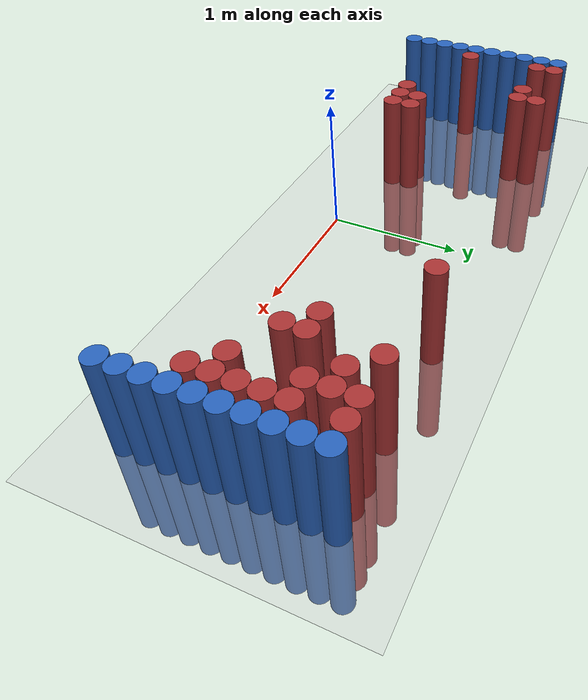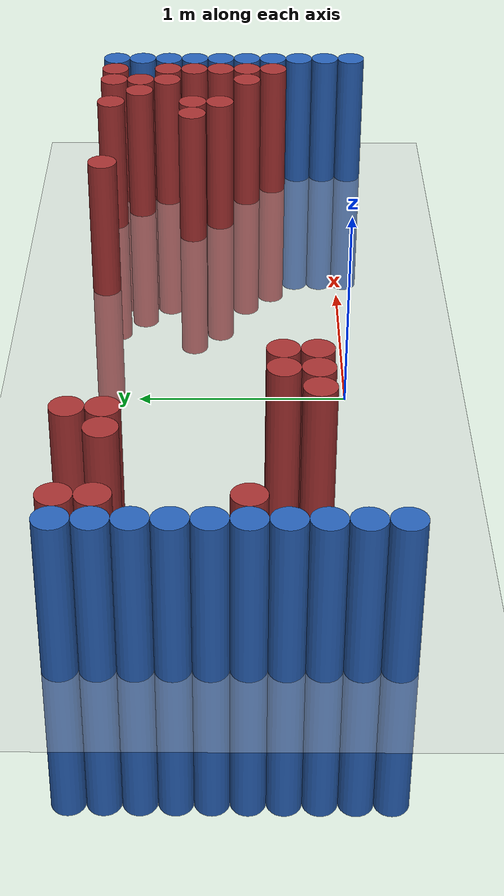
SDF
<sdf version="1.6">
 <world name="default">
  <model name="ground_plane">
   <static>1</static>
   <link name="link">
    <collision name="collision">
     <geometry><plane><normal>0 0 1</normal><size>100 100</size></plane></geometry>
     <surface><friction><ode><mu>100</mu><mu2>50</mu2></ode></friction></surface>
    </collision>
    <visual name="visual">
     <cast_shadows>0</cast_shadows>
     <geometry><plane><normal>0 0 1</normal><size>100 100</size></plane></geometry>
     <material>
      <script><uri>file://media/materials/scripts/gazebo.material</uri><name>Gazebo/Grey</name></script>
     </material>
    </visual>
   </link>
  </model>
  <model name="unit_cylinder_92">
   <static>1</static>
   <pose>2.425000 -0.125000 0.000000 0.000000 0.000000 0.000000</pose>
   <link name="link">
    <inertial>
     <mass>1</mass>
     <inertia><ixx>0.145833</ixx><ixy>0</ixy><ixz>0</ixz><iyy>0.145833</iyy><iyz>0</iyz><izz>0.125</izz></inertia>
    </inertial>
    <collision name="collision">
     <geometry><cylinder><radius>0.075000</radius><length>1.5</length></cylinder></geometry>
    </collision>
    <visual name="visual">
     <geometry><cylinder><radius>0.075000</radius><length>1.5</length></cylinder></geometry>
     <material>
      <ambient>0.152000 0.379000 0.720000 1</ambient>
      <diffuse>0.152000 0.379000 0.720000 1</diffuse>
     </material>
     <material>
      <script><name>Gazebo/Grey</name><uri>file://media/materials/scripts/gazebo.material</uri></script>
     </material>
    </visual>
   </link>
  </model>
  <model name="unit_cylinder_93">
   <static>1</static>
   <pose>-1.925000 -0.125000 0.000000 0.000000 0.000000 0.000000</pose>
   <link name="link">
    <inertial>
     <mass>1</mass>
     <inertia><ixx>0.145833</ixx><ixy>0</ixy><ixz>0</ixz><iyy>0.145833</iyy><iyz>0</iyz><izz>0.125</izz></inertia>
    </inertial>
    <collision name="collision">
     <geometry><cylinder><radius>0.075000</radius><length>1.5</length></cylinder></geometry>
    </collision>
    <visual name="visual">
     <geometry><cylinder><radius>0.075000</radius><length>1.5</length></cylinder></geometry>
     <material>
      <ambient>0.152000 0.379000 0.720000 1</ambient>
      <diffuse>0.152000 0.379000 0.720000 1</diffuse>
     </material>
     <material>
      <script><name>Gazebo/Grey</name><uri>file://media/materials/scripts/gazebo.material</uri></script>
     </material>
    </visual>
   </link>
  </model>
  <model name="unit_cylinder_94">
   <static>1</static>
   <pose>2.425000 0.025000 0.000000 0.000000 0.000000 0.000000</pose>
   <link name="link">
    <inertial>
     <mass>1</mass>
     <inertia><ixx>0.145833</ixx><ixy>0</ixy><ixz>0</ixz><iyy>0.145833</iyy><iyz>0</iyz><izz>0.125</izz></inertia>
    </inertial>
    <collision name="collision">
     <geometry><cylinder><radius>0.075000</radius><length>1.5</length></cylinder></geometry>
    </collision>
    <visual name="visual">
     <geometry><cylinder><radius>0.075000</radius><length>1.5</length></cylinder></geometry>
     <material>
      <ambient>0.152000 0.379000 0.720000 1</ambient>
      <diffuse>0.152000 0.379000 0.720000 1</diffuse>
     </material>
     <material>
      <script><name>Gazebo/Grey</name><uri>file://media/materials/scripts/gazebo.material</uri></script>
     </material>
    </visual>
   </link>
  </model>
  <model name="unit_cylinder_95">
   <static>1</static>
   <pose>-1.925000 0.025000 0.000000 0.000000 0.000000 0.000000</pose>
   <link name="link">
    <inertial>
     <mass>1</mass>
     <inertia><ixx>0.145833</ixx><ixy>0</ixy><ixz>0</ixz><iyy>0.145833</iyy><iyz>0</iyz><izz>0.125</izz></inertia>
    </inertial>
    <collision name="collision">
     <geometry><cylinder><radius>0.075000</radius><length>1.5</length></cylinder></geometry>
    </collision>
    <visual name="visual">
     <geometry><cylinder><radius>0.075000</radius><length>1.5</length></cylinder></geometry>
     <material>
      <ambient>0.152000 0.379000 0.720000 1</ambient>
      <diffuse>0.152000 0.379000 0.720000 1</diffuse>
     </material>
     <material>
      <script><name>Gazebo/Grey</name><uri>file://media/materials/scripts/gazebo.material</uri></script>
     </material>
    </visual>
   </link>
  </model>
  <model name="unit_cylinder_96">
   <static>1</static>
   <pose>-1.925000 0.175000 0.000000 0.000000 0.000000 0.000000</pose>
   <link name="link">
    <inertial>
     <mass>1</mass>
     <inertia><ixx>0.145833</ixx><ixy>0</ixy><ixz>0</ixz><iyy>0.145833</iyy><iyz>0</iyz><izz>0.125</izz></inertia>
    </inertial>
    <collision name="collision">
     <geometry><cylinder><radius>0.075000</radius><length>1.5</length></cylinder></geometry>
    </collision>
    <visual name="visual">
     <geometry><cylinder><radius>0.075000</radius><length>1.5</length></cylinder></geometry>
     <material>
      <ambient>0.152000 0.379000 0.720000 1</ambient>
      <diffuse>0.152000 0.379000 0.720000 1</diffuse>
     </material>
     <material>
      <script><name>Gazebo/Grey</name><uri>file://media/materials/scripts/gazebo.material</uri></script>
     </material>
    </visual>
   </link>
  </model>
  <model name="unit_cylinder_97">
   <static>1</static>
   <pose>-1.925000 0.325000 0.000000 0.000000 0.000000 0.000000</pose>
   <link name="link">
    <inertial>
     <mass>1</mass>
     <inertia><ixx>0.145833</ixx><ixy>0</ixy><ixz>0</ixz><iyy>0.145833</iyy><iyz>0</iyz><izz>0.125</izz></inertia>
    </inertial>
    <collision name="collision">
     <geometry><cylinder><radius>0.075000</radius><length>1.5</length></cylinder></geometry>
    </collision>
    <visual name="visual">
     <geometry><cylinder><radius>0.075000</radius><length>1.5</length></cylinder></geometry>
     <material>
      <ambient>0.152000 0.379000 0.720000 1</ambient>
      <diffuse>0.152000 0.379000 0.720000 1</diffuse>
     </material>
     <material>
      <script><name>Gazebo/Grey</name><uri>file://media/materials/scripts/gazebo.material</uri></script>
     </material>
    </visual>
   </link>
  </model>
  <model name="unit_cylinder_98">
   <static>1</static>
   <pose>-1.925000 0.475000 0.000000 0.000000 0.000000 0.000000</pose>
   <link name="link">
    <inertial>
     <mass>1</mass>
     <inertia><ixx>0.145833</ixx><ixy>0</ixy><ixz>0</ixz><iyy>0.145833</iyy><iyz>0</iyz><izz>0.125</izz></inertia>
    </inertial>
    <collision name="collision">
     <geometry><cylinder><radius>0.075000</radius><length>1.5</length></cylinder></geometry>
    </collision>
    <visual name="visual">
     <geometry><cylinder><radius>0.075000</radius><length>1.5</length></cylinder></geometry>
     <material>
      <ambient>0.152000 0.379000 0.720000 1</ambient>
      <diffuse>0.152000 0.379000 0.720000 1</diffuse>
     </material>
     <material>
      <script><name>Gazebo/Grey</name><uri>file://media/materials/scripts/gazebo.material</uri></script>
     </material>
    </visual>
   </link>
  </model>
  <model name="unit_cylinder_99">
   <static>1</static>
   <pose>-1.925000 0.625000 0.000000 0.000000 0.000000 0.000000</pose>
   <link name="link">
    <inertial>
     <mass>1</mass>
     <inertia><ixx>0.145833</ixx><ixy>0</ixy><ixz>0</ixz><iyy>0.145833</iyy><iyz>0</iyz><izz>0.125</izz></inertia>
    </inertial>
    <collision name="collision">
     <geometry><cylinder><radius>0.075000</radius><length>1.5</length></cylinder></geometry>
    </collision>
    <visual name="visual">
     <geometry><cylinder><radius>0.075000</radius><length>1.5</length></cylinder></geometry>
     <material>
      <ambient>0.152000 0.379000 0.720000 1</ambient>
      <diffuse>0.152000 0.379000 0.720000 1</diffuse>
     </material>
     <material>
      <script><name>Gazebo/Grey</name><uri>file://media/materials/scripts/gazebo.material</uri></script>
     </material>
    </visual>
   </link>
  </model>
  <model name="unit_cylinder_100">
   <static>1</static>
   <pose>-1.925000 0.775000 0.000000 0.000000 0.000000 0.000000</pose>
   <link name="link">
    <inertial>
     <mass>1</mass>
     <inertia><ixx>0.145833</ixx><ixy>0</ixy><ixz>0</ixz><iyy>0.145833</iyy><iyz>0</iyz><izz>0.125</izz></inertia>
    </inertial>
    <collision name="collision">
     <geometry><cylinder><radius>0.075000</radius><length>1.5</length></cylinder></geometry>
    </collision>
    <visual name="visual">
     <geometry><cylinder><radius>0.075000</radius><length>1.5</length></cylinder></geometry>
     <material>
      <ambient>0.152000 0.379000 0.720000 1</ambient>
      <diffuse>0.152000 0.379000 0.720000 1</diffuse>
     </material>
     <material>
      <script><name>Gazebo/Grey</name><uri>file://media/materials/scripts/gazebo.material</uri></script>
     </material>
    </visual>
   </link>
  </model>
  <model name="unit_cylinder_101">
   <static>1</static>
   <pose>-1.925000 0.925000 0.000000 0.000000 0.000000 0.000000</pose>
   <link name="link">
    <inertial>
     <mass>1</mass>
     <inertia><ixx>0.145833</ixx><ixy>0</ixy><ixz>0</ixz><iyy>0.145833</iyy><iyz>0</iyz><izz>0.125</izz></inertia>
    </inertial>
    <collision name="collision">
     <geometry><cylinder><radius>0.075000</radius><length>1.5</length></cylinder></geometry>
    </collision>
    <visual name="visual">
     <geometry><cylinder><radius>0.075000</radius><length>1.5</length></cylinder></geometry>
     <material>
      <ambient>0.152000 0.379000 0.720000 1</ambient>
      <diffuse>0.152000 0.379000 0.720000 1</diffuse>
     </material>
     <material>
      <script><name>Gazebo/Grey</name><uri>file://media/materials/scripts/gazebo.material</uri></script>
     </material>
    </visual>
   </link>
  </model>
  <model name="unit_cylinder_102">
   <static>1</static>
   <pose>-1.925000 1.075000 0.000000 0.000000 0.000000 0.000000</pose>
   <link name="link">
    <inertial>
     <mass>1</mass>
     <inertia><ixx>0.145833</ixx><ixy>0</ixy><ixz>0</ixz><iyy>0.145833</iyy><iyz>0</iyz><izz>0.125</izz></inertia>
    </inertial>
    <collision name="collision">
     <geometry><cylinder><radius>0.075000</radius><length>1.5</length></cylinder></geometry>
    </collision>
    <visual name="visual">
     <geometry><cylinder><radius>0.075000</radius><length>1.5</length></cylinder></geometry>
     <material>
      <ambient>0.152000 0.379000 0.720000 1</ambient>
      <diffuse>0.152000 0.379000 0.720000 1</diffuse>
     </material>
     <material>
      <script><name>Gazebo/Grey</name><uri>file://media/materials/scripts/gazebo.material</uri></script>
     </material>
    </visual>
   </link>
  </model>
  <model name="unit_cylinder_103">
   <static>1</static>
   <pose>-1.925000 1.225000 0.000000 0.000000 0.000000 0.000000</pose>
   <link name="link">
    <inertial>
     <mass>1</mass>
     <inertia><ixx>0.145833</ixx><ixy>0</ixy><ixz>0</ixz><iyy>0.145833</iyy><iyz>0</iyz><izz>0.125</izz></inertia>
    </inertial>
    <collision name="collision">
     <geometry><cylinder><radius>0.075000</radius><length>1.5</length></cylinder></geometry>
    </collision>
    <visual name="visual">
     <geometry><cylinder><radius>0.075000</radius><length>1.5</length></cylinder></geometry>
     <material>
      <ambient>0.152000 0.379000 0.720000 1</ambient>
      <diffuse>0.152000 0.379000 0.720000 1</diffuse>
     </material>
     <material>
      <script><name>Gazebo/Grey</name><uri>file://media/materials/scripts/gazebo.material</uri></script>
     </material>
    </visual>
   </link>
  </model>
  <model name="unit_cylinder_126">
   <static>1</static>
   <pose>-1.775000 0.475000 0.000000 0.000000 0.000000 0.000000</pose>
   <link name="link">
    <inertial>
     <mass>1</mass>
     <inertia><ixx>0.145833</ixx><ixy>0</ixy><ixz>0</ixz><iyy>0.145833</iyy><iyz>0</iyz><izz>0.125</izz></inertia>
    </inertial>
    <collision name="collision">
     <geometry><cylinder><radius>0.075000</radius><length>1.5</length></cylinder></geometry>
    </collision>
    <visual name="visual">
     <geometry><cylinder><radius>0.075000</radius><length>1.5</length></cylinder></geometry>
     <material>
      <ambient>0.648000 0.192000 0.192000 1</ambient>
      <diffuse>0.648000 0.192000 0.192000 1</diffuse>
     </material>
     <material>
      <script><name>Gazebo/Grey</name><uri>file://media/materials/scripts/gazebo.material</uri></script>
     </material>
    </visual>
   </link>
  </model>
  <model name="unit_cylinder_127">
   <static>1</static>
   <pose>-1.775000 1.075000 0.000000 0.000000 0.000000 0.000000</pose>
   <link name="link">
    <inertial>
     <mass>1</mass>
     <inertia><ixx>0.145833</ixx><ixy>0</ixy><ixz>0</ixz><iyy>0.145833</iyy><iyz>0</iyz><izz>0.125</izz></inertia>
    </inertial>
    <collision name="collision">
     <geometry><cylinder><radius>0.075000</radius><length>1.5</length></cylinder></geometry>
    </collision>
    <visual name="visual">
     <geometry><cylinder><radius>0.075000</radius><length>1.5</length></cylinder></geometry>
     <material>
      <ambient>0.648000 0.192000 0.192000 1</ambient>
      <diffuse>0.648000 0.192000 0.192000 1</diffuse>
     </material>
     <material>
      <script><name>Gazebo/Grey</name><uri>file://media/materials/scripts/gazebo.material</uri></script>
     </material>
    </visual>
   </link>
  </model>
  <model name="unit_cylinder_128">
   <static>1</static>
   <pose>-1.775000 1.225000 0.000000 0.000000 0.000000 0.000000</pose>
   <link name="link">
    <inertial>
     <mass>1</mass>
     <inertia><ixx>0.145833</ixx><ixy>0</ixy><ixz>0</ixz><iyy>0.145833</iyy><iyz>0</iyz><izz>0.125</izz></inertia>
    </inertial>
    <collision name="collision">
     <geometry><cylinder><radius>0.075000</radius><length>1.5</length></cylinder></geometry>
    </collision>
    <visual name="visual">
     <geometry><cylinder><radius>0.075000</radius><length>1.5</length></cylinder></geometry>
     <material>
      <ambient>0.648000 0.192000 0.192000 1</ambient>
      <diffuse>0.648000 0.192000 0.192000 1</diffuse>
     </material>
     <material>
      <script><name>Gazebo/Grey</name><uri>file://media/materials/scripts/gazebo.material</uri></script>
     </material>
    </visual>
   </link>
  </model>
  <model name="unit_cylinder_152">
   <static>1</static>
   <pose>-1.325000 1.075000 0.000000 0.000000 0.000000 0.000000</pose>
   <link name="link">
    <inertial>
     <mass>1</mass>
     <inertia><ixx>0.145833</ixx><ixy>0</ixy><ixz>0</ixz><iyy>0.145833</iyy><iyz>0</iyz><izz>0.125</izz></inertia>
    </inertial>
    <collision name="collision">
     <geometry><cylinder><radius>0.075000</radius><length>1.5</length></cylinder></geometry>
    </collision>
    <visual name="visual">
     <geometry><cylinder><radius>0.075000</radius><length>1.5</length></cylinder></geometry>
     <material>
      <ambient>0.648000 0.192000 0.192000 1</ambient>
      <diffuse>0.648000 0.192000 0.192000 1</diffuse>
     </material>
     <material>
      <script><name>Gazebo/Grey</name><uri>file://media/materials/scripts/gazebo.material</uri></script>
     </material>
    </visual>
   </link>
  </model>
  <model name="unit_cylinder_153">
   <static>1</static>
   <pose>-1.175000 1.075000 0.000000 0.000000 0.000000 0.000000</pose>
   <link name="link">
    <inertial>
     <mass>1</mass>
     <inertia><ixx>0.145833</ixx><ixy>0</ixy><ixz>0</ixz><iyy>0.145833</iyy><iyz>0</iyz><izz>0.125</izz></inertia>
    </inertial>
    <collision name="collision">
     <geometry><cylinder><radius>0.075000</radius><length>1.5</length></cylinder></geometry>
    </collision>
    <visual name="visual">
     <geometry><cylinder><radius>0.075000</radius><length>1.5</length></cylinder></geometry>
     <material>
      <ambient>0.648000 0.192000 0.192000 1</ambient>
      <diffuse>0.648000 0.192000 0.192000 1</diffuse>
     </material>
     <material>
      <script><name>Gazebo/Grey</name><uri>file://media/materials/scripts/gazebo.material</uri></script>
     </material>
    </visual>
   </link>
  </model>
  <model name="unit_cylinder_154">
   <static>1</static>
   <pose>-1.175000 1.225000 0.000000 0.000000 0.000000 0.000000</pose>
   <link name="link">
    <inertial>
     <mass>1</mass>
     <inertia><ixx>0.145833</ixx><ixy>0</ixy><ixz>0</ixz><iyy>0.145833</iyy><iyz>0</iyz><izz>0.125</izz></inertia>
    </inertial>
    <collision name="collision">
     <geometry><cylinder><radius>0.075000</radius><length>1.5</length></cylinder></geometry>
    </collision>
    <visual name="visual">
     <geometry><cylinder><radius>0.075000</radius><length>1.5</length></cylinder></geometry>
     <material>
      <ambient>0.648000 0.192000 0.192000 1</ambient>
      <diffuse>0.648000 0.192000 0.192000 1</diffuse>
     </material>
     <material>
      <script><name>Gazebo/Grey</name><uri>file://media/materials/scripts/gazebo.material</uri></script>
     </material>
    </visual>
   </link>
  </model>
  <model name="unit_cylinder_156">
   <static>1</static>
   <pose>-1.025000 0.175000 0.000000 0.000000 0.000000 0.000000</pose>
   <link name="link">
    <inertial>
     <mass>1</mass>
     <inertia><ixx>0.145833</ixx><ixy>0</ixy><ixz>0</ixz><iyy>0.145833</iyy><iyz>0</iyz><izz>0.125</izz></inertia>
    </inertial>
    <collision name="collision">
     <geometry><cylinder><radius>0.075000</radius><length>1.5</length></cylinder></geometry>
    </collision>
    <visual name="visual">
     <geometry><cylinder><radius>0.075000</radius><length>1.5</length></cylinder></geometry>
     <material>
      <ambient>0.648000 0.192000 0.192000 1</ambient>
      <diffuse>0.648000 0.192000 0.192000 1</diffuse>
     </material>
     <material>
      <script><name>Gazebo/Grey</name><uri>file://media/materials/scripts/gazebo.material</uri></script>
     </material>
    </visual>
   </link>
  </model>
  <model name="unit_cylinder_160">
   <static>1</static>
   <pose>-0.875000 0.175000 0.000000 0.000000 0.000000 0.000000</pose>
   <link name="link">
    <inertial>
     <mass>1</mass>
     <inertia><ixx>0.145833</ixx><ixy>0</ixy><ixz>0</ixz><iyy>0.145833</iyy><iyz>0</iyz><izz>0.125</izz></inertia>
    </inertial>
    <collision name="collision">
     <geometry><cylinder><radius>0.075000</radius><length>1.5</length></cylinder></geometry>
    </collision>
    <visual name="visual">
     <geometry><cylinder><radius>0.075000</radius><length>1.5</length></cylinder></geometry>
     <material>
      <ambient>0.648000 0.192000 0.192000 1</ambient>
      <diffuse>0.648000 0.192000 0.192000 1</diffuse>
     </material>
     <material>
      <script><name>Gazebo/Grey</name><uri>file://media/materials/scripts/gazebo.material</uri></script>
     </material>
    </visual>
   </link>
  </model>
  <model name="unit_cylinder_161">
   <static>1</static>
   <pose>-0.875000 0.325000 0.000000 0.000000 0.000000 0.000000</pose>
   <link name="link">
    <inertial>
     <mass>1</mass>
     <inertia><ixx>0.145833</ixx><ixy>0</ixy><ixz>0</ixz><iyy>0.145833</iyy><iyz>0</iyz><izz>0.125</izz></inertia>
    </inertial>
    <collision name="collision">
     <geometry><cylinder><radius>0.075000</radius><length>1.5</length></cylinder></geometry>
    </collision>
    <visual name="visual">
     <geometry><cylinder><radius>0.075000</radius><length>1.5</length></cylinder></geometry>
     <material>
      <ambient>0.648000 0.192000 0.192000 1</ambient>
      <diffuse>0.648000 0.192000 0.192000 1</diffuse>
     </material>
     <material>
      <script><name>Gazebo/Grey</name><uri>file://media/materials/scripts/gazebo.material</uri></script>
     </material>
    </visual>
   </link>
  </model>
  <model name="unit_cylinder_164">
   <static>1</static>
   <pose>-0.725000 0.175000 0.000000 0.000000 0.000000 0.000000</pose>
   <link name="link">
    <inertial>
     <mass>1</mass>
     <inertia><ixx>0.145833</ixx><ixy>0</ixy><ixz>0</ixz><iyy>0.145833</iyy><iyz>0</iyz><izz>0.125</izz></inertia>
    </inertial>
    <collision name="collision">
     <geometry><cylinder><radius>0.075000</radius><length>1.5</length></cylinder></geometry>
    </collision>
    <visual name="visual">
     <geometry><cylinder><radius>0.075000</radius><length>1.5</length></cylinder></geometry>
     <material>
      <ambient>0.648000 0.192000 0.192000 1</ambient>
      <diffuse>0.648000 0.192000 0.192000 1</diffuse>
     </material>
     <material>
      <script><name>Gazebo/Grey</name><uri>file://media/materials/scripts/gazebo.material</uri></script>
     </material>
    </visual>
   </link>
  </model>
  <model name="unit_cylinder_165">
   <static>1</static>
   <pose>-0.725000 0.325000 0.000000 0.000000 0.000000 0.000000</pose>
   <link name="link">
    <inertial>
     <mass>1</mass>
     <inertia><ixx>0.145833</ixx><ixy>0</ixy><ixz>0</ixz><iyy>0.145833</iyy><iyz>0</iyz><izz>0.125</izz></inertia>
    </inertial>
    <collision name="collision">
     <geometry><cylinder><radius>0.075000</radius><length>1.5</length></cylinder></geometry>
    </collision>
    <visual name="visual">
     <geometry><cylinder><radius>0.075000</radius><length>1.5</length></cylinder></geometry>
     <material>
      <ambient>0.648000 0.192000 0.192000 1</ambient>
      <diffuse>0.648000 0.192000 0.192000 1</diffuse>
     </material>
     <material>
      <script><name>Gazebo/Grey</name><uri>file://media/materials/scripts/gazebo.material</uri></script>
     </material>
    </visual>
   </link>
  </model>
  <model name="unit_cylinder_195">
   <static>1</static>
   <pose>1.075000 1.225000 0.000000 0.000000 0.000000 0.000000</pose>
   <link name="link">
    <inertial>
     <mass>1</mass>
     <inertia><ixx>0.145833</ixx><ixy>0</ixy><ixz>0</ixz><iyy>0.145833</iyy><iyz>0</iyz><izz>0.125</izz></inertia>
    </inertial>
    <collision name="collision">
     <geometry><cylinder><radius>0.075000</radius><length>1.5</length></cylinder></geometry>
    </collision>
    <visual name="visual">
     <geometry><cylinder><radius>0.075000</radius><length>1.5</length></cylinder></geometry>
     <material>
      <ambient>0.648000 0.192000 0.192000 1</ambient>
      <diffuse>0.648000 0.192000 0.192000 1</diffuse>
     </material>
     <material>
      <script><name>Gazebo/Grey</name><uri>file://media/materials/scripts/gazebo.material</uri></script>
     </material>
    </visual>
   </link>
  </model>
  <model name="unit_cylinder_207">
   <static>1</static>
   <pose>1.675000 0.775000 0.000000 0.000000 0.000000 0.000000</pose>
   <link name="link">
    <inertial>
     <mass>1</mass>
     <inertia><ixx>0.145833</ixx><ixy>0</ixy><ixz>0</ixz><iyy>0.145833</iyy><iyz>0</iyz><izz>0.125</izz></inertia>
    </inertial>
    <collision name="collision">
     <geometry><cylinder><radius>0.075000</radius><length>1.5</length></cylinder></geometry>
    </collision>
    <visual name="visual">
     <geometry><cylinder><radius>0.075000</radius><length>1.5</length></cylinder></geometry>
     <material>
      <ambient>0.648000 0.192000 0.192000 1</ambient>
      <diffuse>0.648000 0.192000 0.192000 1</diffuse>
     </material>
     <material>
      <script><name>Gazebo/Grey</name><uri>file://media/materials/scripts/gazebo.material</uri></script>
     </material>
    </visual>
   </link>
  </model>
  <model name="unit_cylinder_210">
   <static>1</static>
   <pose>1.825000 0.625000 0.000000 0.000000 0.000000 0.000000</pose>
   <link name="link">
    <inertial>
     <mass>1</mass>
     <inertia><ixx>0.145833</ixx><ixy>0</ixy><ixz>0</ixz><iyy>0.145833</iyy><iyz>0</iyz><izz>0.125</izz></inertia>
    </inertial>
    <collision name="collision">
     <geometry><cylinder><radius>0.075000</radius><length>1.5</length></cylinder></geometry>
    </collision>
    <visual name="visual">
     <geometry><cylinder><radius>0.075000</radius><length>1.5</length></cylinder></geometry>
     <material>
      <ambient>0.648000 0.192000 0.192000 1</ambient>
      <diffuse>0.648000 0.192000 0.192000 1</diffuse>
     </material>
     <material>
      <script><name>Gazebo/Grey</name><uri>file://media/materials/scripts/gazebo.material</uri></script>
     </material>
    </visual>
   </link>
  </model>
  <model name="unit_cylinder_211">
   <static>1</static>
   <pose>1.825000 0.775000 0.000000 0.000000 0.000000 0.000000</pose>
   <link name="link">
    <inertial>
     <mass>1</mass>
     <inertia><ixx>0.145833</ixx><ixy>0</ixy><ixz>0</ixz><iyy>0.145833</iyy><iyz>0</iyz><izz>0.125</izz></inertia>
    </inertial>
    <collision name="collision">
     <geometry><cylinder><radius>0.075000</radius><length>1.5</length></cylinder></geometry>
    </collision>
    <visual name="visual">
     <geometry><cylinder><radius>0.075000</radius><length>1.5</length></cylinder></geometry>
     <material>
      <ambient>0.648000 0.192000 0.192000 1</ambient>
      <diffuse>0.648000 0.192000 0.192000 1</diffuse>
     </material>
     <material>
      <script><name>Gazebo/Grey</name><uri>file://media/materials/scripts/gazebo.material</uri></script>
     </material>
    </visual>
   </link>
  </model>
  <model name="unit_cylinder_212">
   <static>1</static>
   <pose>1.825000 1.225000 0.000000 0.000000 0.000000 0.000000</pose>
   <link name="link">
    <inertial>
     <mass>1</mass>
     <inertia><ixx>0.145833</ixx><ixy>0</ixy><ixz>0</ixz><iyy>0.145833</iyy><iyz>0</iyz><izz>0.125</izz></inertia>
    </inertial>
    <collision name="collision">
     <geometry><cylinder><radius>0.075000</radius><length>1.5</length></cylinder></geometry>
    </collision>
    <visual name="visual">
     <geometry><cylinder><radius>0.075000</radius><length>1.5</length></cylinder></geometry>
     <material>
      <ambient>0.648000 0.192000 0.192000 1</ambient>
      <diffuse>0.648000 0.192000 0.192000 1</diffuse>
     </material>
     <material>
      <script><name>Gazebo/Grey</name><uri>file://media/materials/scripts/gazebo.material</uri></script>
     </material>
    </visual>
   </link>
  </model>
  <model name="unit_cylinder_213">
   <static>1</static>
   <pose>1.975000 1.075000 0.000000 0.000000 0.000000 0.000000</pose>
   <link name="link">
    <inertial>
     <mass>1</mass>
     <inertia><ixx>0.145833</ixx><ixy>0</ixy><ixz>0</ixz><iyy>0.145833</iyy><iyz>0</iyz><izz>0.125</izz></inertia>
    </inertial>
    <collision name="collision">
     <geometry><cylinder><radius>0.075000</radius><length>1.5</length></cylinder></geometry>
    </collision>
    <visual name="visual">
     <geometry><cylinder><radius>0.075000</radius><length>1.5</length></cylinder></geometry>
     <material>
      <ambient>0.648000 0.192000 0.192000 1</ambient>
      <diffuse>0.648000 0.192000 0.192000 1</diffuse>
     </material>
     <material>
      <script><name>Gazebo/Grey</name><uri>file://media/materials/scripts/gazebo.material</uri></script>
     </material>
    </visual>
   </link>
  </model>
  <model name="unit_cylinder_217">
   <static>1</static>
   <pose>2.125000 0.475000 0.000000 0.000000 0.000000 0.000000</pose>
   <link name="link">
    <inertial>
     <mass>1</mass>
     <inertia><ixx>0.145833</ixx><ixy>0</ixy><ixz>0</ixz><iyy>0.145833</iyy><iyz>0</iyz><izz>0.125</izz></inertia>
    </inertial>
    <collision name="collision">
     <geometry><cylinder><radius>0.075000</radius><length>1.5</length></cylinder></geometry>
    </collision>
    <visual name="visual">
     <geometry><cylinder><radius>0.075000</radius><length>1.5</length></cylinder></geometry>
     <material>
      <ambient>0.648000 0.192000 0.192000 1</ambient>
      <diffuse>0.648000 0.192000 0.192000 1</diffuse>
     </material>
     <material>
      <script><name>Gazebo/Grey</name><uri>file://media/materials/scripts/gazebo.material</uri></script>
     </material>
    </visual>
   </link>
  </model>
  <model name="unit_cylinder_218">
   <static>1</static>
   <pose>2.125000 0.925000 0.000000 0.000000 0.000000 0.000000</pose>
   <link name="link">
    <inertial>
     <mass>1</mass>
     <inertia><ixx>0.145833</ixx><ixy>0</ixy><ixz>0</ixz><iyy>0.145833</iyy><iyz>0</iyz><izz>0.125</izz></inertia>
    </inertial>
    <collision name="collision">
     <geometry><cylinder><radius>0.075000</radius><length>1.5</length></cylinder></geometry>
    </collision>
    <visual name="visual">
     <geometry><cylinder><radius>0.075000</radius><length>1.5</length></cylinder></geometry>
     <material>
      <ambient>0.648000 0.192000 0.192000 1</ambient>
      <diffuse>0.648000 0.192000 0.192000 1</diffuse>
     </material>
     <material>
      <script><name>Gazebo/Grey</name><uri>file://media/materials/scripts/gazebo.material</uri></script>
     </material>
    </visual>
   </link>
  </model>
  <model name="unit_cylinder_219">
   <static>1</static>
   <pose>2.125000 1.075000 0.000000 0.000000 0.000000 0.000000</pose>
   <link name="link">
    <inertial>
     <mass>1</mass>
     <inertia><ixx>0.145833</ixx><ixy>0</ixy><ixz>0</ixz><iyy>0.145833</iyy><iyz>0</iyz><izz>0.125</izz></inertia>
    </inertial>
    <collision name="collision">
     <geometry><cylinder><radius>0.075000</radius><length>1.5</length></cylinder></geometry>
    </collision>
    <visual name="visual">
     <geometry><cylinder><radius>0.075000</radius><length>1.5</length></cylinder></geometry>
     <material>
      <ambient>0.648000 0.192000 0.192000 1</ambient>
      <diffuse>0.648000 0.192000 0.192000 1</diffuse>
     </material>
     <material>
      <script><name>Gazebo/Grey</name><uri>file://media/materials/scripts/gazebo.material</uri></script>
     </material>
    </visual>
   </link>
  </model>
  <model name="unit_cylinder_220">
   <static>1</static>
   <pose>2.125000 1.225000 0.000000 0.000000 0.000000 0.000000</pose>
   <link name="link">
    <inertial>
     <mass>1</mass>
     <inertia><ixx>0.145833</ixx><ixy>0</ixy><ixz>0</ixz><iyy>0.145833</iyy><iyz>0</iyz><izz>0.125</izz></inertia>
    </inertial>
    <collision name="collision">
     <geometry><cylinder><radius>0.075000</radius><length>1.5</length></cylinder></geometry>
    </collision>
    <visual name="visual">
     <geometry><cylinder><radius>0.075000</radius><length>1.5</length></cylinder></geometry>
     <material>
      <ambient>0.648000 0.192000 0.192000 1</ambient>
      <diffuse>0.648000 0.192000 0.192000 1</diffuse>
     </material>
     <material>
      <script><name>Gazebo/Grey</name><uri>file://media/materials/scripts/gazebo.material</uri></script>
     </material>
    </visual>
   </link>
  </model>
  <model name="unit_cylinder_229">
   <static>1</static>
   <pose>2.275000 0.325000 0.000000 0.000000 0.000000 0.000000</pose>
   <link name="link">
    <inertial>
     <mass>1</mass>
     <inertia><ixx>0.145833</ixx><ixy>0</ixy><ixz>0</ixz><iyy>0.145833</iyy><iyz>0</iyz><izz>0.125</izz></inertia>
    </inertial>
    <collision name="collision">
     <geometry><cylinder><radius>0.075000</radius><length>1.5</length></cylinder></geometry>
    </collision>
    <visual name="visual">
     <geometry><cylinder><radius>0.075000</radius><length>1.5</length></cylinder></geometry>
     <material>
      <ambient>0.648000 0.192000 0.192000 1</ambient>
      <diffuse>0.648000 0.192000 0.192000 1</diffuse>
     </material>
     <material>
      <script><name>Gazebo/Grey</name><uri>file://media/materials/scripts/gazebo.material</uri></script>
     </material>
    </visual>
   </link>
  </model>
  <model name="unit_cylinder_230">
   <static>1</static>
   <pose>2.275000 0.475000 0.000000 0.000000 0.000000 0.000000</pose>
   <link name="link">
    <inertial>
     <mass>1</mass>
     <inertia><ixx>0.145833</ixx><ixy>0</ixy><ixz>0</ixz><iyy>0.145833</iyy><iyz>0</iyz><izz>0.125</izz></inertia>
    </inertial>
    <collision name="collision">
     <geometry><cylinder><radius>0.075000</radius><length>1.5</length></cylinder></geometry>
    </collision>
    <visual name="visual">
     <geometry><cylinder><radius>0.075000</radius><length>1.5</length></cylinder></geometry>
     <material>
      <ambient>0.648000 0.192000 0.192000 1</ambient>
      <diffuse>0.648000 0.192000 0.192000 1</diffuse>
     </material>
     <material>
      <script><name>Gazebo/Grey</name><uri>file://media/materials/scripts/gazebo.material</uri></script>
     </material>
    </visual>
   </link>
  </model>
  <model name="unit_cylinder_231">
   <static>1</static>
   <pose>2.275000 0.625000 0.000000 0.000000 0.000000 0.000000</pose>
   <link name="link">
    <inertial>
     <mass>1</mass>
     <inertia><ixx>0.145833</ixx><ixy>0</ixy><ixz>0</ixz><iyy>0.145833</iyy><iyz>0</iyz><izz>0.125</izz></inertia>
    </inertial>
    <collision name="collision">
     <geometry><cylinder><radius>0.075000</radius><length>1.5</length></cylinder></geometry>
    </collision>
    <visual name="visual">
     <geometry><cylinder><radius>0.075000</radius><length>1.5</length></cylinder></geometry>
     <material>
      <ambient>0.648000 0.192000 0.192000 1</ambient>
      <diffuse>0.648000 0.192000 0.192000 1</diffuse>
     </material>
     <material>
      <script><name>Gazebo/Grey</name><uri>file://media/materials/scripts/gazebo.material</uri></script>
     </material>
    </visual>
   </link>
  </model>
  <model name="unit_cylinder_232">
   <static>1</static>
   <pose>2.275000 0.775000 0.000000 0.000000 0.000000 0.000000</pose>
   <link name="link">
    <inertial>
     <mass>1</mass>
     <inertia><ixx>0.145833</ixx><ixy>0</ixy><ixz>0</ixz><iyy>0.145833</iyy><iyz>0</iyz><izz>0.125</izz></inertia>
    </inertial>
    <collision name="collision">
     <geometry><cylinder><radius>0.075000</radius><length>1.5</length></cylinder></geometry>
    </collision>
    <visual name="visual">
     <geometry><cylinder><radius>0.075000</radius><length>1.5</length></cylinder></geometry>
     <material>
      <ambient>0.648000 0.192000 0.192000 1</ambient>
      <diffuse>0.648000 0.192000 0.192000 1</diffuse>
     </material>
     <material>
      <script><name>Gazebo/Grey</name><uri>file://media/materials/scripts/gazebo.material</uri></script>
     </material>
    </visual>
   </link>
  </model>
  <model name="unit_cylinder_233">
   <static>1</static>
   <pose>2.275000 0.925000 0.000000 0.000000 0.000000 0.000000</pose>
   <link name="link">
    <inertial>
     <mass>1</mass>
     <inertia><ixx>0.145833</ixx><ixy>0</ixy><ixz>0</ixz><iyy>0.145833</iyy><iyz>0</iyz><izz>0.125</izz></inertia>
    </inertial>
    <collision name="collision">
     <geometry><cylinder><radius>0.075000</radius><length>1.5</length></cylinder></geometry>
    </collision>
    <visual name="visual">
     <geometry><cylinder><radius>0.075000</radius><length>1.5</length></cylinder></geometry>
     <material>
      <ambient>0.648000 0.192000 0.192000 1</ambient>
      <diffuse>0.648000 0.192000 0.192000 1</diffuse>
     </material>
     <material>
      <script><name>Gazebo/Grey</name><uri>file://media/materials/scripts/gazebo.material</uri></script>
     </material>
    </visual>
   </link>
  </model>
  <model name="unit_cylinder_234">
   <static>1</static>
   <pose>2.275000 1.225000 0.000000 0.000000 0.000000 0.000000</pose>
   <link name="link">
    <inertial>
     <mass>1</mass>
     <inertia><ixx>0.145833</ixx><ixy>0</ixy><ixz>0</ixz><iyy>0.145833</iyy><iyz>0</iyz><izz>0.125</izz></inertia>
    </inertial>
    <collision name="collision">
     <geometry><cylinder><radius>0.075000</radius><length>1.5</length></cylinder></geometry>
    </collision>
    <visual name="visual">
     <geometry><cylinder><radius>0.075000</radius><length>1.5</length></cylinder></geometry>
     <material>
      <ambient>0.648000 0.192000 0.192000 1</ambient>
      <diffuse>0.648000 0.192000 0.192000 1</diffuse>
     </material>
     <material>
      <script><name>Gazebo/Grey</name><uri>file://media/materials/scripts/gazebo.material</uri></script>
     </material>
    </visual>
   </link>
  </model>
  <model name="unit_cylinder_247">
   <static>1</static>
   <pose>2.425000 0.175000 0.000000 0.000000 0.000000 0.000000</pose>
   <link name="link">
    <inertial>
     <mass>1</mass>
     <inertia><ixx>0.145833</ixx><ixy>0</ixy><ixz>0</ixz><iyy>0.145833</iyy><iyz>0</iyz><izz>0.125</izz></inertia>
    </inertial>
    <collision name="collision">
     <geometry><cylinder><radius>0.075000</radius><length>1.5</length></cylinder></geometry>
    </collision>
    <visual name="visual">
     <geometry><cylinder><radius>0.075000</radius><length>1.5</length></cylinder></geometry>
     <material>
      <ambient>0.152000 0.379000 0.720000 1</ambient>
      <diffuse>0.152000 0.379000 0.720000 1</diffuse>
     </material>
     <material>
      <script><name>Gazebo/Grey</name><uri>file://media/materials/scripts/gazebo.material</uri></script>
     </material>
    </visual>
   </link>
  </model>
  <model name="unit_cylinder_248">
   <static>1</static>
   <pose>2.425000 0.325000 0.000000 0.000000 0.000000 0.000000</pose>
   <link name="link">
    <inertial>
     <mass>1</mass>
     <inertia><ixx>0.145833</ixx><ixy>0</ixy><ixz>0</ixz><iyy>0.145833</iyy><iyz>0</iyz><izz>0.125</izz></inertia>
    </inertial>
    <collision name="collision">
     <geometry><cylinder><radius>0.075000</radius><length>1.5</length></cylinder></geometry>
    </collision>
    <visual name="visual">
     <geometry><cylinder><radius>0.075000</radius><length>1.5</length></cylinder></geometry>
     <material>
      <ambient>0.152000 0.379000 0.720000 1</ambient>
      <diffuse>0.152000 0.379000 0.720000 1</diffuse>
     </material>
     <material>
      <script><name>Gazebo/Grey</name><uri>file://media/materials/scripts/gazebo.material</uri></script>
     </material>
    </visual>
   </link>
  </model>
  <model name="unit_cylinder_249">
   <static>1</static>
   <pose>2.425000 0.475000 0.000000 0.000000 0.000000 0.000000</pose>
   <link name="link">
    <inertial>
     <mass>1</mass>
     <inertia><ixx>0.145833</ixx><ixy>0</ixy><ixz>0</ixz><iyy>0.145833</iyy><iyz>0</iyz><izz>0.125</izz></inertia>
    </inertial>
    <collision name="collision">
     <geometry><cylinder><radius>0.075000</radius><length>1.5</length></cylinder></geometry>
    </collision>
    <visual name="visual">
     <geometry><cylinder><radius>0.075000</radius><length>1.5</length></cylinder></geometry>
     <material>
      <ambient>0.152000 0.379000 0.720000 1</ambient>
      <diffuse>0.152000 0.379000 0.720000 1</diffuse>
     </material>
     <material>
      <script><name>Gazebo/Grey</name><uri>file://media/materials/scripts/gazebo.material</uri></script>
     </material>
    </visual>
   </link>
  </model>
  <model name="unit_cylinder_250">
   <static>1</static>
   <pose>2.425000 0.625000 0.000000 0.000000 0.000000 0.000000</pose>
   <link name="link">
    <inertial>
     <mass>1</mass>
     <inertia><ixx>0.145833</ixx><ixy>0</ixy><ixz>0</ixz><iyy>0.145833</iyy><iyz>0</iyz><izz>0.125</izz></inertia>
    </inertial>
    <collision name="collision">
     <geometry><cylinder><radius>0.075000</radius><length>1.5</length></cylinder></geometry>
    </collision>
    <visual name="visual">
     <geometry><cylinder><radius>0.075000</radius><length>1.5</length></cylinder></geometry>
     <material>
      <ambient>0.152000 0.379000 0.720000 1</ambient>
      <diffuse>0.152000 0.379000 0.720000 1</diffuse>
     </material>
     <material>
      <script><name>Gazebo/Grey</name><uri>file://media/materials/scripts/gazebo.material</uri></script>
     </material>
    </visual>
   </link>
  </model>
  <model name="unit_cylinder_251">
   <static>1</static>
   <pose>2.425000 0.775000 0.000000 0.000000 0.000000 0.000000</pose>
   <link name="link">
    <inertial>
     <mass>1</mass>
     <inertia><ixx>0.145833</ixx><ixy>0</ixy><ixz>0</ixz><iyy>0.145833</iyy><iyz>0</iyz><izz>0.125</izz></inertia>
    </inertial>
    <collision name="collision">
     <geometry><cylinder><radius>0.075000</radius><length>1.5</length></cylinder></geometry>
    </collision>
    <visual name="visual">
     <geometry><cylinder><radius>0.075000</radius><length>1.5</length></cylinder></geometry>
     <material>
      <ambient>0.152000 0.379000 0.720000 1</ambient>
      <diffuse>0.152000 0.379000 0.720000 1</diffuse>
     </material>
     <material>
      <script><name>Gazebo/Grey</name><uri>file://media/materials/scripts/gazebo.material</uri></script>
     </material>
    </visual>
   </link>
  </model>
  <model name="unit_cylinder_252">
   <static>1</static>
   <pose>2.425000 0.925000 0.000000 0.000000 0.000000 0.000000</pose>
   <link name="link">
    <inertial>
     <mass>1</mass>
     <inertia><ixx>0.145833</ixx><ixy>0</ixy><ixz>0</ixz><iyy>0.145833</iyy><iyz>0</iyz><izz>0.125</izz></inertia>
    </inertial>
    <collision name="collision">
     <geometry><cylinder><radius>0.075000</radius><length>1.5</length></cylinder></geometry>
    </collision>
    <visual name="visual">
     <geometry><cylinder><radius>0.075000</radius><length>1.5</length></cylinder></geometry>
     <material>
      <ambient>0.152000 0.379000 0.720000 1</ambient>
      <diffuse>0.152000 0.379000 0.720000 1</diffuse>
     </material>
     <material>
      <script><name>Gazebo/Grey</name><uri>file://media/materials/scripts/gazebo.material</uri></script>
     </material>
    </visual>
   </link>
  </model>
  <model name="unit_cylinder_253">
   <static>1</static>
   <pose>2.425000 1.075000 0.000000 0.000000 0.000000 0.000000</pose>
   <link name="link">
    <inertial>
     <mass>1</mass>
     <inertia><ixx>0.145833</ixx><ixy>0</ixy><ixz>0</ixz><iyy>0.145833</iyy><iyz>0</iyz><izz>0.125</izz></inertia>
    </inertial>
    <collision name="collision">
     <geometry><cylinder><radius>0.075000</radius><length>1.5</length></cylinder></geometry>
    </collision>
    <visual name="visual">
     <geometry><cylinder><radius>0.075000</radius><length>1.5</length></cylinder></geometry>
     <material>
      <ambient>0.152000 0.379000 0.720000 1</ambient>
      <diffuse>0.152000 0.379000 0.720000 1</diffuse>
     </material>
     <material>
      <script><name>Gazebo/Grey</name><uri>file://media/materials/scripts/gazebo.material</uri></script>
     </material>
    </visual>
   </link>
  </model>
  <model name="unit_cylinder_254">
   <static>1</static>
   <pose>2.425000 1.225000 0.000000 0.000000 0.000000 0.000000</pose>
   <link name="link">
    <inertial>
     <mass>1</mass>
     <inertia><ixx>0.145833</ixx><ixy>0</ixy><ixz>0</ixz><iyy>0.145833</iyy><iyz>0</iyz><izz>0.125</izz></inertia>
    </inertial>
    <collision name="collision">
     <geometry><cylinder><radius>0.075000</radius><length>1.5</length></cylinder></geometry>
    </collision>
    <visual name="visual">
     <geometry><cylinder><radius>0.075000</radius><length>1.5</length></cylinder></geometry>
     <material>
      <ambient>0.152000 0.379000 0.720000 1</ambient>
      <diffuse>0.152000 0.379000 0.720000 1</diffuse>
     </material>
     <material>
      <script><name>Gazebo/Grey</name><uri>file://media/materials/scripts/gazebo.material</uri></script>
     </material>
    </visual>
   </link>
  </model>
 </world>
</sdf>
